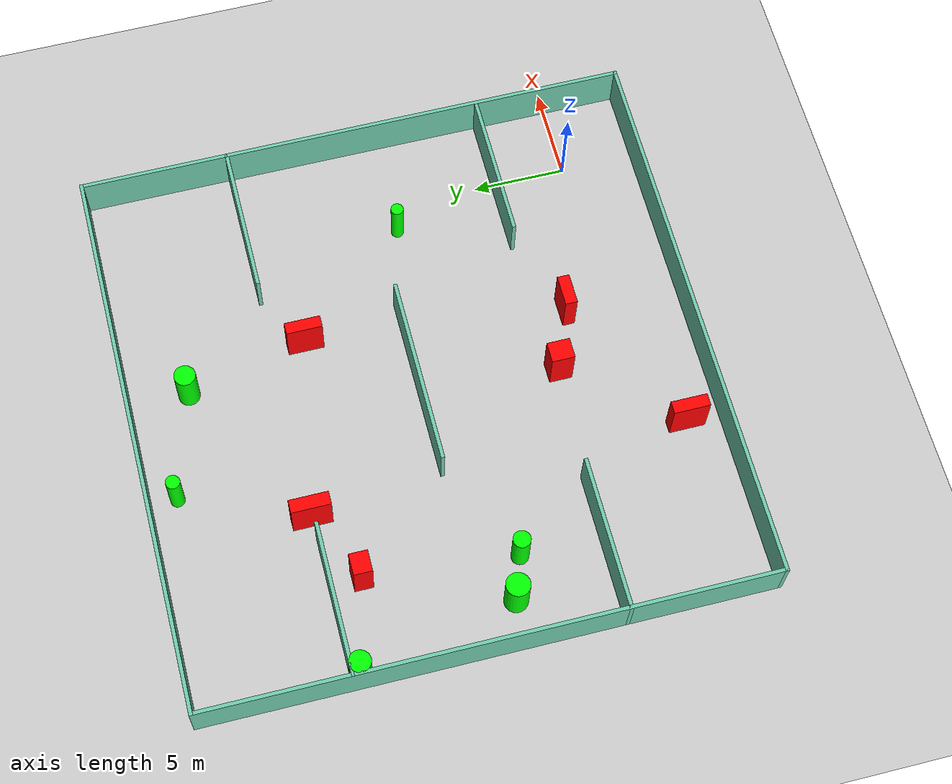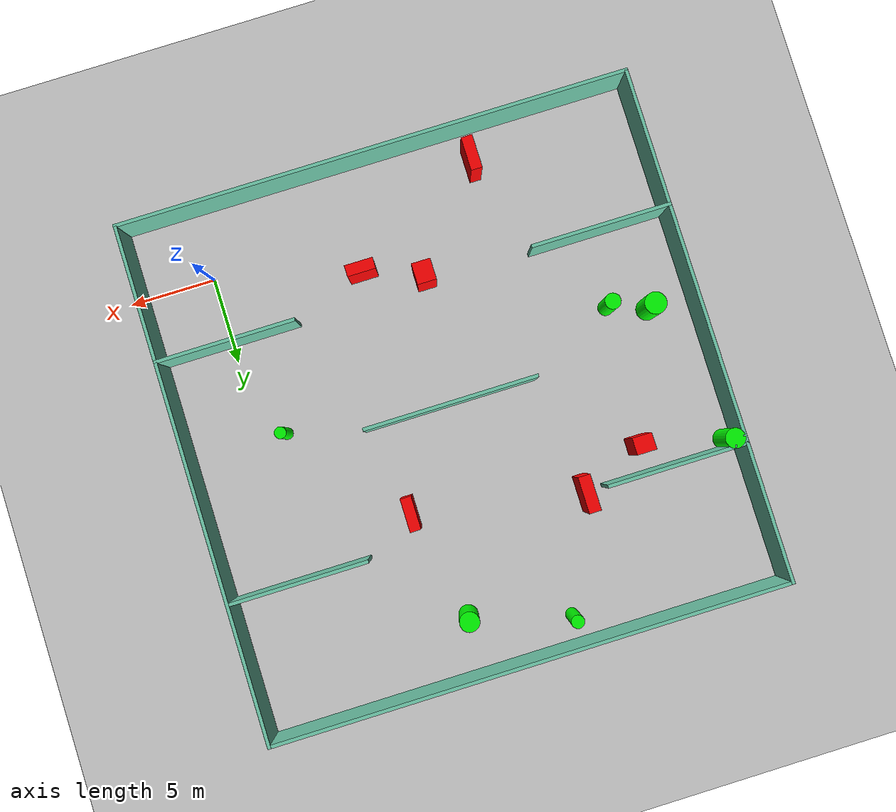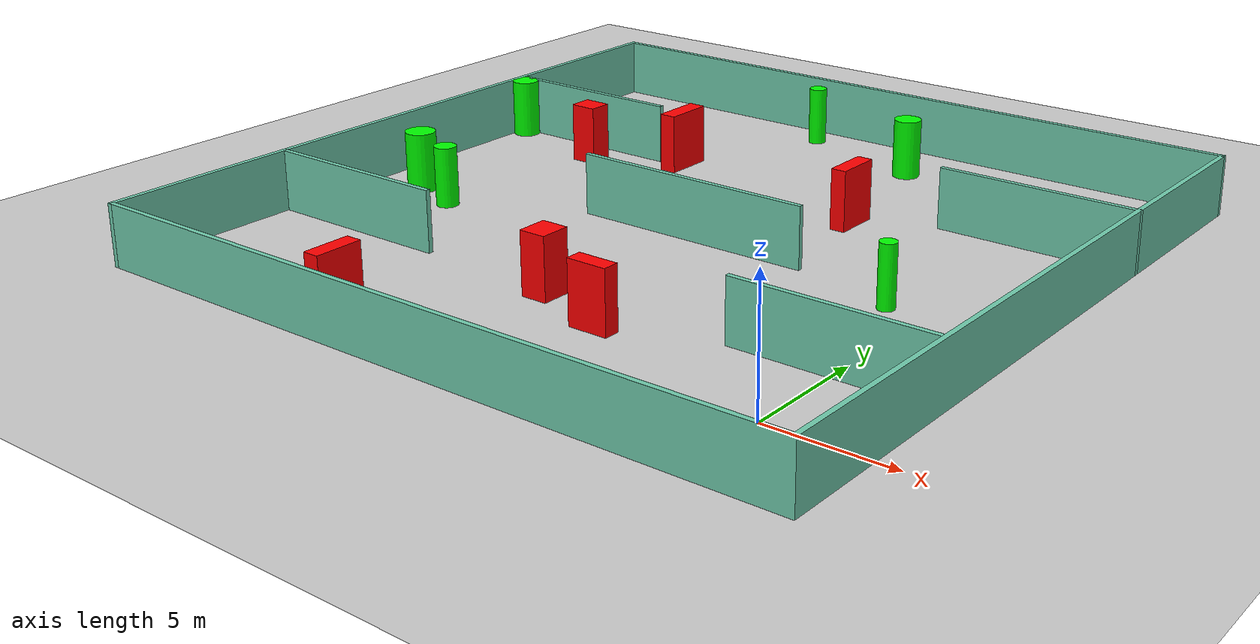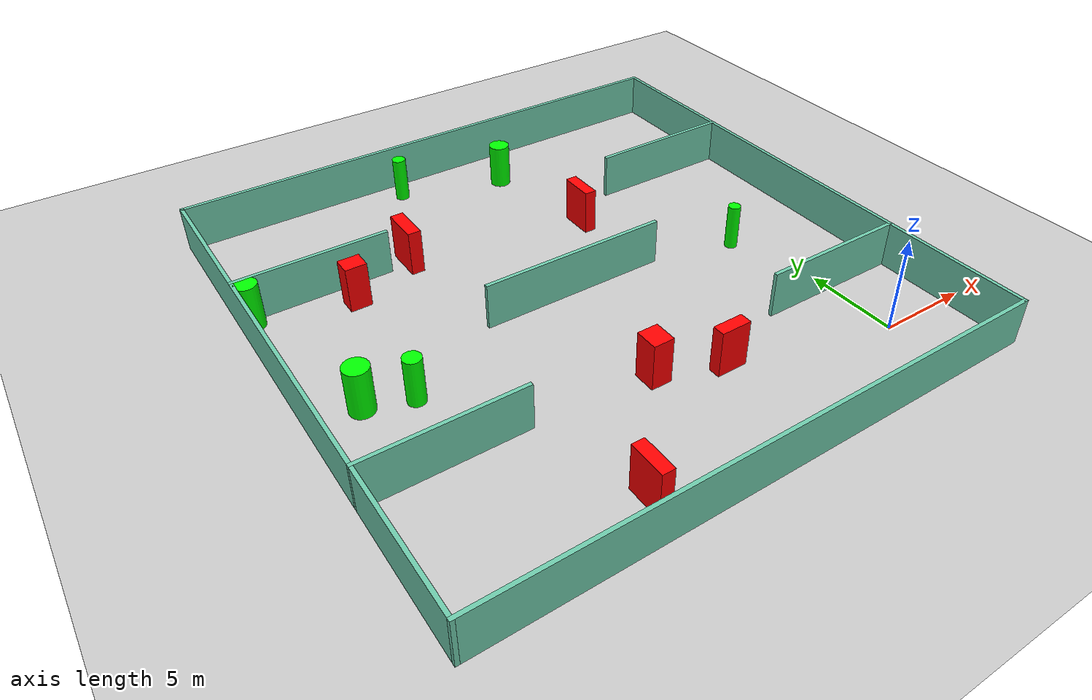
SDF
<sdf version="1.7">
 <world name="default">
  <light name="sun" type="directional">
   <pose>0 0 10 0 -0 0</pose>
   <diffuse>0.8 0.8 0.8 1</diffuse>
   <specular>0.2 0.2 0.2 1</specular>
   <attenuation>
    <range>1000</range>
    <constant>0.9</constant>
    <linear>0.01</linear>
    <quadratic>0.001</quadratic>
   </attenuation>
   <direction>-0.5 0.1 -0.9</direction>
   <spot><inner_angle>0</inner_angle><outer_angle>0</outer_angle><falloff>0</falloff></spot>
  </light>
  <model name="ground_plane">
   <static>1</static>
   <link name="link">
    <collision name="collision">
     <geometry><plane><normal>0 0 1</normal><size>100 100</size></plane></geometry>
     <surface>
      <contact><collide_bitmask>65535</collide_bitmask></contact>
      <friction><ode><mu>100</mu><mu2>50</mu2></ode></friction>
     </surface>
    </collision>
    <visual name="visual">
     <cast_shadows>0</cast_shadows>
     <geometry><plane><normal>0 0 1</normal><size>100 100</size></plane></geometry>
     <material>
      <script><uri>file://media/materials/scripts/gazebo.material</uri><name>Gazebo/Grey</name></script>
     </material>
    </visual>
   </link>
  </model>
  <gravity>0 0 -9.8</gravity>
  <magnetic_field>6e-06 2.3e-05 -4.2e-05</magnetic_field>
  <atmosphere type="adiabatic"/>
  <physics type="ode">
   <max_step_size>0.001</max_step_size>
   <real_time_factor>1</real_time_factor>
   <real_time_update_rate>1000</real_time_update_rate>
  </physics>
  <scene><ambient>0.4 0.4 0.4 1</ambient><background>0.7 0.7 0.7 1</background><shadows>1</shadows></scene>
  <spherical_coordinates>
   <surface_model>EARTH_WGS84</surface_model>
   <latitude_deg>0</latitude_deg>
   <longitude_deg>0</longitude_deg>
   <elevation>0</elevation>
   <heading_deg>0</heading_deg>
  </spherical_coordinates>
  <model name="my_base_walls">
   <link name="Wall_10">
    <collision name="Wall_10_Collision">
     <geometry><box><size>8.2 0.2 2.5</size></box></geometry>
     <pose>0 0 1.25 0 -0 0</pose>
    </collision>
    <visual name="Wall_10_Visual">
     <pose>0 0 1.25 0 -0 0</pose>
     <geometry><box><size>8.2 0.2 2.5</size></box></geometry>
     <material>
      <script><uri>file://media/materials/scripts/gazebo.material</uri><name>Gazebo/Grey</name></script>
      <ambient>0.435294 0.796078 0.67451 1</ambient>
     </material>
     <meta><layer>0</layer></meta>
    </visual>
    <pose>-11 -7 0 0 -0 0</pose>
   </link>
   <link name="Wall_12">
    <collision name="Wall_12_Collision">
     <geometry><box><size>8.2 0.2 2.5</size></box></geometry>
     <pose>0 0 1.25 0 -0 0</pose>
    </collision>
    <visual name="Wall_12_Visual">
     <pose>0 0 1.25 0 -0 0</pose>
     <geometry><box><size>8.2 0.2 2.5</size></box></geometry>
     <material>
      <script><uri>file://media/materials/scripts/gazebo.material</uri><name>Gazebo/Grey</name></script>
      <ambient>0.435294 0.796078 0.67451 1</ambient>
     </material>
     <meta><layer>0</layer></meta>
    </visual>
    <pose>-11 7 0 0 -0 0</pose>
   </link>
   <link name="Wall_14">
    <collision name="Wall_14_Collision">
     <geometry><box><size>8.2 0.2 2.5</size></box></geometry>
     <pose>0 0 1.25 0 -0 0</pose>
    </collision>
    <visual name="Wall_14_Visual">
     <pose>0 0 1.25 0 -0 0</pose>
     <geometry><box><size>8.2 0.2 2.5</size></box></geometry>
     <material>
      <script><uri>file://media/materials/scripts/gazebo.material</uri><name>Gazebo/Grey</name></script>
      <ambient>0.435294 0.796078 0.67451 1</ambient>
     </material>
     <meta><layer>0</layer></meta>
    </visual>
    <pose>11 7 0 0 -0 3.14159</pose>
   </link>
   <link name="Wall_16">
    <collision name="Wall_16_Collision">
     <geometry><box><size>10.2 0.2 2.5</size></box></geometry>
     <pose>0 0 1.25 0 -0 0</pose>
    </collision>
    <visual name="Wall_16_Visual">
     <pose>0 0 1.25 0 -0 0</pose>
     <geometry><box><size>10.2 0.2 2.5</size></box></geometry>
     <material>
      <script><uri>file://media/materials/scripts/gazebo.material</uri><name>Gazebo/Grey</name></script>
      <ambient>0.435294 0.796078 0.67451 1</ambient>
     </material>
     <meta><layer>0</layer></meta>
    </visual>
    <pose>0 0 0 0 -0 3.14159</pose>
   </link>
   <link name="Wall_2">
    <collision name="Wall_2_Collision">
     <geometry><box><size>30.2 0.2 2.5</size></box></geometry>
     <pose>0 0 1.25 0 -0 0</pose>
    </collision>
    <visual name="Wall_2_Visual">
     <pose>0 0 1.25 0 -0 0</pose>
     <geometry><box><size>30.2 0.2 2.5</size></box></geometry>
     <material>
      <script><uri>file://media/materials/scripts/gazebo.material</uri><name>Gazebo/Grey</name></script>
      <ambient>0.435294 0.796078 0.67451 1</ambient>
     </material>
     <meta><layer>0</layer></meta>
    </visual>
    <pose>0 -15 0 0 -0 3.14159</pose>
   </link>
   <link name="Wall_3">
    <collision name="Wall_3_Collision">
     <geometry><box><size>30.2 0.2 2.5</size></box></geometry>
     <pose>0 0 1.25 0 -0 0</pose>
    </collision>
    <visual name="Wall_3_Visual">
     <pose>0 0 1.25 0 -0 0</pose>
     <geometry><box><size>30.2 0.2 2.5</size></box></geometry>
     <material>
      <script><uri>file://media/materials/scripts/gazebo.material</uri><name>Gazebo/Grey</name></script>
      <ambient>0.435294 0.796078 0.67451 1</ambient>
     </material>
     <meta><layer>0</layer></meta>
    </visual>
    <pose>-15 0 0 0 -0 1.5708</pose>
   </link>
   <link name="Wall_4">
    <collision name="Wall_4_Collision">
     <geometry><box><size>30.2 0.2 2.5</size></box></geometry>
     <pose>0 0 1.25 0 -0 0</pose>
    </collision>
    <visual name="Wall_4_Visual">
     <pose>0 0 1.25 0 -0 0</pose>
     <geometry><box><size>30.2 0.2 2.5</size></box></geometry>
     <material>
      <script><uri>file://media/materials/scripts/gazebo.material</uri><name>Gazebo/Grey</name></script>
      <ambient>0.435294 0.796078 0.67451 1</ambient>
     </material>
     <meta><layer>0</layer></meta>
    </visual>
    <pose>0 15 0 0 -0 0</pose>
   </link>
   <link name="Wall_6">
    <collision name="Wall_6_Collision">
     <geometry><box><size>30.2 0.2 2.5</size></box></geometry>
     <pose>0 0 1.25 0 -0 0</pose>
    </collision>
    <visual name="Wall_6_Visual">
     <pose>0 0 1.25 0 -0 0</pose>
     <geometry><box><size>30.2 0.2 2.5</size></box></geometry>
     <material>
      <script><uri>file://media/materials/scripts/gazebo.material</uri><name>Gazebo/Grey</name></script>
      <ambient>0.435294 0.796078 0.67451 1</ambient>
     </material>
     <meta><layer>0</layer></meta>
    </visual>
    <pose>15 0 0 0 -0 1.5708</pose>
   </link>
   <link name="Wall_8">
    <collision name="Wall_8_Collision">
     <geometry><box><size>8.2 0.2 2.5</size></box></geometry>
     <pose>0 0 1.25 0 -0 0</pose>
    </collision>
    <visual name="Wall_8_Visual">
     <pose>0 0 1.25 0 -0 0</pose>
     <geometry><box><size>8.2 0.2 2.5</size></box></geometry>
     <material>
      <script><uri>file://media/materials/scripts/gazebo.material</uri><name>Gazebo/Grey</name></script>
      <ambient>0.435294 0.796078 0.67451 1</ambient>
     </material>
     <meta><layer>0</layer></meta>
    </visual>
    <pose>11 -7 0 0 -0 3.14159</pose>
   </link>
   <static>1</static>
   <pose>-11 11 0 0 -0 0</pose>
  </model>
  <model name="cylinder1">
   <static>1</static>
   <link name="link">
    <inertial>
     <mass>1</mass>
     <inertia><ixx>0.5</ixx><ixy>0</ixy><ixz>0</ixz><iyy>0.5</iyy><iyz>0</iyz><izz>1</izz></inertia>
    </inertial>
    <collision name="collision">
     <geometry><cylinder><radius>0.6344741921941381</radius><length>2.5</length></cylinder></geometry>
    </collision>
    <visual name="visual">
     <geometry><cylinder><radius>0.6344741921941381</radius><length>2.5</length></cylinder></geometry>
     <material>
      <ambient>0 1 0 1</ambient>
      <diffuse>0 1 0 1</diffuse>
      <specular>0.1 0.1 0.1 1</specular>
      <emissive>0 0 0 0</emissive>
     </material>
    </visual>
   </link>
   <pose>-23.54428095766846 9.080888825641857 1.25 0 0 0</pose>
  </model>
  <model name="cylinder2">
   <static>1</static>
   <link name="link">
    <inertial>
     <mass>1</mass>
     <inertia><ixx>0.5</ixx><ixy>0</ixy><ixz>0</ixz><iyy>0.5</iyy><iyz>0</iyz><izz>1</izz></inertia>
    </inertial>
    <collision name="collision">
     <geometry><cylinder><radius>0.37819284843393547</radius><length>2.5</length></cylinder></geometry>
    </collision>
    <visual name="visual">
     <geometry><cylinder><radius>0.37819284843393547</radius><length>2.5</length></cylinder></geometry>
     <material>
      <ambient>0 1 0 1</ambient>
      <diffuse>0 1 0 1</diffuse>
      <specular>0.1 0.1 0.1 1</specular>
      <emissive>0 0 0 0</emissive>
     </material>
    </visual>
   </link>
   <pose>-14.089980612579128 24.53199078141378 1.25 0 0 0</pose>
  </model>
  <model name="cylinder3">
   <static>1</static>
   <link name="link">
    <inertial>
     <mass>1</mass>
     <inertia><ixx>0.5</ixx><ixy>0</ixy><ixz>0</ixz><iyy>0.5</iyy><iyz>0</iyz><izz>1</izz></inertia>
    </inertial>
    <collision name="collision">
     <geometry><cylinder><radius>0.46289182699366915</radius><length>2.5</length></cylinder></geometry>
    </collision>
    <visual name="visual">
     <geometry><cylinder><radius>0.46289182699366915</radius><length>2.5</length></cylinder></geometry>
     <material>
      <ambient>0 1 0 1</ambient>
      <diffuse>0 1 0 1</diffuse>
      <specular>0.1 0.1 0.1 1</specular>
      <emissive>0 0 0 0</emissive>
     </material>
    </visual>
   </link>
   <pose>-21.30065781171711 8.276967618707575 1.25 0 0 0</pose>
  </model>
  <model name="cylinder4">
   <static>1</static>
   <link name="link">
    <inertial>
     <mass>1</mass>
     <inertia><ixx>0.5</ixx><ixy>0</ixy><ixz>0</ixz><iyy>0.5</iyy><iyz>0</iyz><izz>1</izz></inertia>
    </inertial>
    <collision name="collision">
     <geometry><cylinder><radius>0.5755738597790803</radius><length>2.5</length></cylinder></geometry>
    </collision>
    <visual name="visual">
     <geometry><cylinder><radius>0.5755738597790803</radius><length>2.5</length></cylinder></geometry>
     <material>
      <ambient>0 1 0 1</ambient>
      <diffuse>0 1 0 1</diffuse>
      <specular>0.1 0.1 0.1 1</specular>
      <emissive>0 0 0 0</emissive>
     </material>
    </visual>
   </link>
   <pose>-25.4435987353776 17.541580685389725 1.25 0 0 0</pose>
  </model>
  <model name="cylinder5">
   <static>1</static>
   <link name="link">
    <inertial>
     <mass>1</mass>
     <inertia><ixx>0.5</ixx><ixy>0</ixy><ixz>0</ixz><iyy>0.5</iyy><iyz>0</iyz><izz>1</izz></inertia>
    </inertial>
    <collision name="collision">
     <geometry><cylinder><radius>0.5697602323343423</radius><length>2.5</length></cylinder></geometry>
    </collision>
    <visual name="visual">
     <geometry><cylinder><radius>0.5697602323343423</radius><length>2.5</length></cylinder></geometry>
     <material>
      <ambient>0 1 0 1</ambient>
      <diffuse>0 1 0 1</diffuse>
      <specular>0.1 0.1 0.1 1</specular>
      <emissive>0 0 0 0</emissive>
     </material>
    </visual>
   </link>
   <pose>-8.422463109217322 22.792154291016104 1.25 0 0 0</pose>
  </model>
  <model name="cylinder6">
   <static>1</static>
   <link name="link">
    <inertial>
     <mass>1</mass>
     <inertia><ixx>0.5</ixx><ixy>0</ixy><ixz>0</ixz><iyy>0.5</iyy><iyz>0</iyz><izz>1</izz></inertia>
    </inertial>
    <collision name="collision">
     <geometry><cylinder><radius>0.338430203788107</radius><length>2.5</length></cylinder></geometry>
    </collision>
    <visual name="visual">
     <geometry><cylinder><radius>0.338430203788107</radius><length>2.5</length></cylinder></geometry>
     <material>
      <ambient>0 1 0 1</ambient>
      <diffuse>0 1 0 1</diffuse>
      <specular>0.1 0.1 0.1 1</specular>
      <emissive>0 0 0 0</emissive>
     </material>
    </visual>
   </link>
   <pose>-1.5131167056317985 9.806905576641803 1.25 0 0 0</pose>
  </model>
  <model name="box1">
   <static>1</static>
   <link name="link">
    <inertial>
     <mass>1</mass>
     <inertia><ixx>0.083</ixx><ixy>0</ixy><ixz>0</ixz><iyy>0.083</iyy><iyz>0</iyz><izz>0.083</izz></inertia>
    </inertial>
    <collision name="collision">
     <geometry><box><size>0.7109470175744296 2.0962760808825807 2.5</size></box></geometry>
    </collision>
    <visual name="visual">
     <geometry><box><size>0.7109470175744296 2.0962760808825807 2.5</size></box></geometry>
     <material>
      <ambient>1 0 0 1</ambient>
      <diffuse>1 0 0 1</diffuse>
      <specular>0.1 0.1 0.1 1</specular>
      <emissive>0 0 0 0</emissive>
     </material>
    </visual>
    <sensor name="my_contact" type="contact">
     <contact><collision>box_collision</collision><topic>__default_topic__</topic></contact>
    </sensor>
   </link>
   <pose>-16.81778612994759 18.082162209335262 1.25 0 0 0</pose>
  </model>
  <model name="box2">
   <static>1</static>
   <link name="link">
    <inertial>
     <mass>1</mass>
     <inertia><ixx>0.083</ixx><ixy>0</ixy><ixz>0</ixz><iyy>0.083</iyy><iyz>0</iyz><izz>0.083</izz></inertia>
    </inertial>
    <collision name="collision">
     <geometry><box><size>0.6627903429864261 1.9458549000352283 2.5</size></box></geometry>
    </collision>
    <visual name="visual">
     <geometry><box><size>0.6627903429864261 1.9458549000352283 2.5</size></box></geometry>
     <material>
      <ambient>1 0 0 1</ambient>
      <diffuse>1 0 0 1</diffuse>
      <specular>0.1 0.1 0.1 1</specular>
      <emissive>0 0 0 0</emissive>
     </material>
    </visual>
    <sensor name="my_contact" type="contact">
     <contact><collision>box_collision</collision><topic>__default_topic__</topic></contact>
    </sensor>
   </link>
   <pose>-16.28239767313388 -2.0686816508352983 1.25 0 0 0</pose>
  </model>
  <model name="box3">
   <static>1</static>
   <link name="link">
    <inertial>
     <mass>1</mass>
     <inertia><ixx>0.083</ixx><ixy>0</ixy><ixz>0</ixz><iyy>0.083</iyy><iyz>0</iyz><izz>0.083</izz></inertia>
    </inertial>
    <collision name="collision">
     <geometry><box><size>1.648820968785308 0.6504669726753463 2.5</size></box></geometry>
    </collision>
    <visual name="visual">
     <geometry><box><size>1.648820968785308 0.6504669726753463 2.5</size></box></geometry>
     <material>
      <ambient>1 0 0 1</ambient>
      <diffuse>1 0 0 1</diffuse>
      <specular>0.1 0.1 0.1 1</specular>
      <emissive>0 0 0 0</emissive>
     </material>
    </visual>
    <sensor name="my_contact" type="contact">
     <contact><collision>box_collision</collision><topic>__default_topic__</topic></contact>
    </sensor>
   </link>
   <pose>-8.409883186572468 2.270601922427433 1.25 0 0 0</pose>
  </model>
  <model name="box4">
   <static>1</static>
   <link name="link">
    <inertial>
     <mass>1</mass>
     <inertia><ixx>0.083</ixx><ixy>0</ixy><ixz>0</ixz><iyy>0.083</iyy><iyz>0</iyz><izz>0.083</izz></inertia>
    </inertial>
    <collision name="collision">
     <geometry><box><size>1.1427546506430306 0.9857327329852581 2.5</size></box></geometry>
    </collision>
    <visual name="visual">
     <geometry><box><size>1.1427546506430306 0.9857327329852581 2.5</size></box></geometry>
     <material>
      <ambient>1 0 0 1</ambient>
      <diffuse>1 0 0 1</diffuse>
      <specular>0.1 0.1 0.1 1</specular>
      <emissive>0 0 0 0</emissive>
     </material>
    </visual>
    <sensor name="my_contact" type="contact">
     <contact><collision>box_collision</collision><topic>__default_topic__</topic></contact>
    </sensor>
   </link>
   <pose>-20.544112488030827 16.347563011582476 1.25 0 0 0</pose>
  </model>
  <model name="box5">
   <static>1</static>
   <link name="link">
    <inertial>
     <mass>1</mass>
     <inertia><ixx>0.083</ixx><ixy>0</ixy><ixz>0</ixz><iyy>0.083</iyy><iyz>0</iyz><izz>0.083</izz></inertia>
    </inertial>
    <collision name="collision">
     <geometry><box><size>0.6361683113209027 1.9233122040149995 2.5</size></box></geometry>
    </collision>
    <visual name="visual">
     <geometry><box><size>0.6361683113209027 1.9233122040149995 2.5</size></box></geometry>
     <material>
      <ambient>1 0 0 1</ambient>
      <diffuse>1 0 0 1</diffuse>
      <specular>0.1 0.1 0.1 1</specular>
      <emissive>0 0 0 0</emissive>
     </material>
    </visual>
    <sensor name="my_contact" type="contact">
     <contact><collision>box_collision</collision><topic>__default_topic__</topic></contact>
    </sensor>
   </link>
   <pose>-7.0589612153492 16.22677696490261 1.25 0 0 0</pose>
  </model>
  <model name="box6">
   <static>1</static>
   <link name="link">
    <inertial>
     <mass>1</mass>
     <inertia><ixx>0.083</ixx><ixy>0</ixy><ixz>0</ixz><iyy>0.083</iyy><iyz>0</iyz><izz>0.083</izz></inertia>
    </inertial>
    <collision name="collision">
     <geometry><box><size>1.1049310346669814 1.2311106601293391 2.5</size></box></geometry>
    </collision>
    <visual name="visual">
     <geometry><box><size>1.1049310346669814 1.2311106601293391 2.5</size></box></geometry>
     <material>
      <ambient>1 0 0 1</ambient>
      <diffuse>1 0 0 1</diffuse>
      <specular>0.1 0.1 0.1 1</specular>
      <emissive>0 0 0 0</emissive>
     </material>
    </visual>
    <sensor name="my_contact" type="contact">
     <contact><collision>box_collision</collision><topic>__default_topic__</topic></contact>
    </sensor>
   </link>
   <pose>-11.738031050759638 3.5641105701247167 1.25 0 0 0</pose>
  </model>
 </world>
</sdf>
